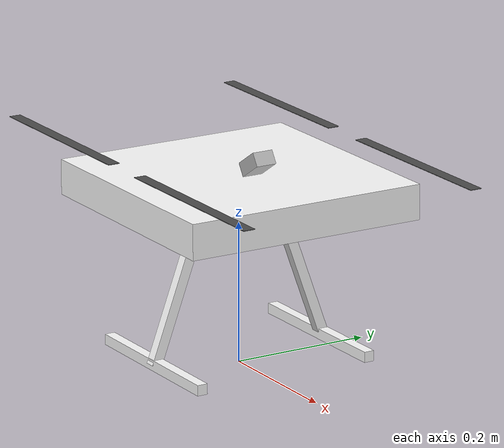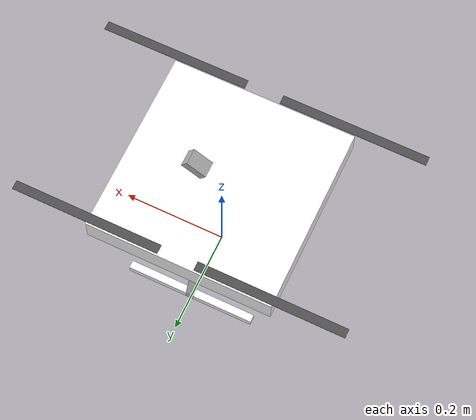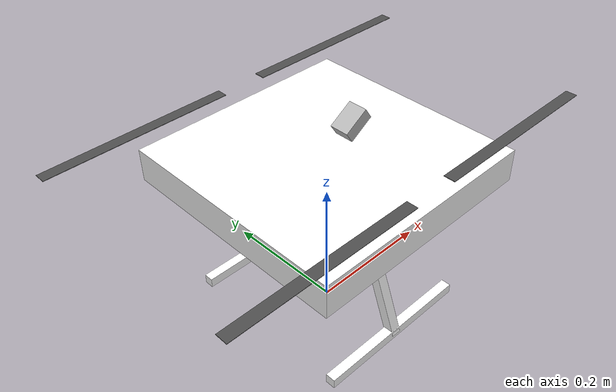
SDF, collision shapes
<?xml version="1.0" encoding="UTF-8"?>
<sdf version='1.9'>
  <model name='x500'>
<include merge='true'>
<uri>model://x500_base</uri>
</include>

    <plugin filename="gz-sim-multicopter-motor-model-system" name="gz::sim::systems::MulticopterMotorModel">
      <jointName>rotor_0_joint</jointName>
      <linkName>rotor_0</linkName>
      <turningDirection>ccw</turningDirection>
      <timeConstantUp>0.0125</timeConstantUp>
      <timeConstantDown>0.025</timeConstantDown>
      <maxRotVelocity>1000.0</maxRotVelocity>
      <motorConstant>8.54858e-06</motorConstant>
      <momentConstant>0.016</momentConstant>
      <commandSubTopic>command/motor_speed</commandSubTopic>
      <motorNumber>0</motorNumber>
      <rotorDragCoefficient>8.06428e-05</rotorDragCoefficient>
      <rollingMomentCoefficient>1e-06</rollingMomentCoefficient>
      <rotorVelocitySlowdownSim>10</rotorVelocitySlowdownSim>
      <motorType>velocity</motorType>
    </plugin>
    <plugin filename="gz-sim-multicopter-motor-model-system" name="gz::sim::systems::MulticopterMotorModel">
      <jointName>rotor_1_joint</jointName>
      <linkName>rotor_1</linkName>
      <turningDirection>ccw</turningDirection>
      <timeConstantUp>0.0125</timeConstantUp>
      <timeConstantDown>0.025</timeConstantDown>
      <maxRotVelocity>1000.0</maxRotVelocity>
      <motorConstant>8.54858e-06</motorConstant>
      <momentConstant>0.016</momentConstant>
      <commandSubTopic>command/motor_speed</commandSubTopic>
      <motorNumber>1</motorNumber>
      <rotorDragCoefficient>8.06428e-05</rotorDragCoefficient>
      <rollingMomentCoefficient>1e-06</rollingMomentCoefficient>
      <rotorVelocitySlowdownSim>10</rotorVelocitySlowdownSim>
      <motorType>velocity</motorType>
    </plugin>
    <plugin filename="gz-sim-multicopter-motor-model-system" name="gz::sim::systems::MulticopterMotorModel">
      <jointName>rotor_2_joint</jointName>
      <linkName>rotor_2</linkName>
      <turningDirection>cw</turningDirection>
      <timeConstantUp>0.0125</timeConstantUp>
      <timeConstantDown>0.025</timeConstantDown>
      <maxRotVelocity>1000.0</maxRotVelocity>
      <motorConstant>8.54858e-06</motorConstant>
      <momentConstant>0.016</momentConstant>
      <commandSubTopic>command/motor_speed</commandSubTopic>
      <motorNumber>2</motorNumber>
      <rotorDragCoefficient>8.06428e-05</rotorDragCoefficient>
      <rollingMomentCoefficient>1e-06</rollingMomentCoefficient>
      <rotorVelocitySlowdownSim>10</rotorVelocitySlowdownSim>
      <motorType>velocity</motorType>
    </plugin>
    <plugin filename="gz-sim-multicopter-motor-model-system" name="gz::sim::systems::MulticopterMotorModel">
      <jointName>rotor_3_joint</jointName>
      <linkName>rotor_3</linkName>
      <turningDirection>cw</turningDirection>
      <timeConstantUp>0.0125</timeConstantUp>
      <timeConstantDown>0.025</timeConstantDown>
      <maxRotVelocity>1000.0</maxRotVelocity>
      <motorConstant>8.54858e-06</motorConstant>
      <momentConstant>0.016</momentConstant>
      <commandSubTopic>command/motor_speed</commandSubTopic>
      <motorNumber>3</motorNumber>
      <rotorDragCoefficient>8.06428e-05</rotorDragCoefficient>
      <rollingMomentCoefficient>1e-06</rollingMomentCoefficient>
      <rotorVelocitySlowdownSim>10</rotorVelocitySlowdownSim>
      <motorType>velocity</motorType>
    </plugin>
  </model>
</sdf>

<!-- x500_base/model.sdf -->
<sdf version='1.9'>
  <model name='x500_base'>
  <!-- ================== LW20 雷达，固定在碳板上 ================== -->
<link name="lidar_sensor_link">
  <!-- Pose 相对于 base_link，贴合碳板位置 -->
  <pose relative_to="base_link">0.047 0.001 0.055 1 0 1.57</pose> <!-- z略高板面1.2cm -->

  <!-- 惯性属性 -->
  <inertial>
    <mass>0.02</mass>
    <inertia>
      <ixx>0.000004</ixx>
      <iyy>0.000004</iyy>
      <izz>0.000002</izz>
      <ixy>0</ixy>
      <ixz>0</ixz>
      <iyz>0</iyz>
    </inertia>
  </inertial>

  <!-- 可视化模型 -->
  <visual name="lidar_visual">
    <geometry>
      <mesh>
        <uri>model://LW20/meshes/LW20.dae</uri>
      </mesh>
    </geometry>
  </visual>

  <!-- 碰撞体 -->
  <collision name="lidar_collision">
    <geometry>
      <box>
        <size>0.03 0.02 0.043</size>
      </box>
    </geometry>
  </collision>

  <!-- GPU LiDAR 传感器 -->
<sensor name="front_lidar" type="gpu_lidar">
  <gz_frame_id>lidar_sensor_link</gz_frame_id>
  <update_rate>50</update_rate>

  <ray>
    <scan>
      <horizontal>
        <samples>360</samples>
        <min_angle>-1.57</min_angle>
        <max_angle>1.57</max_angle>
      </horizontal>
      <vertical>
        <samples>1</samples>
        <min_angle>0</min_angle>
        <max_angle>0</max_angle>
      </vertical>
    </scan>

    <range>
      <min>0.2</min>
      <max>20</max>
      <resolution>0.01</resolution>
    </range>
  </ray>

  <always_on>1</always_on>
  <visualize>true</visualize>
</sensor>
</link>

<!-- 固定 joint，雷达随无人机移动 -->
<joint name="lidar_joint" type="fixed">
  <parent>base_link</parent>
  <child>lidar_sensor_link</child>
  <pose>0 0 0 0 0 0</pose>
</joint>
<!-- ================== LW20 雷达结束 ================== -->
    <pose>0 0 .24 0 0 0</pose>
    <self_collide>false</self_collide>
    <static>false</static>
    <link name="base_link">
      <inertial>
        <mass>2.0</mass>
        <inertia>
          <ixx>0.02166666666666667</ixx>
          <ixy>0</ixy>
          <ixz>0</ixz>
          <iyy>0.02166666666666667</iyy>
          <iyz>0</iyz>
          <izz>0.04000000000000001</izz>
        </inertia>
      </inertial>
      <gravity>true</gravity>
      <velocity_decay/>
      <visual name="base_link_visual">
        <pose>0 0 .025 0 0 3.141592654</pose>
        <geometry>
          <mesh>
            <scale>1 1 1</scale>
            <uri>model://x500_base/meshes/NXP-HGD-CF.dae</uri>
          </mesh>
        </geometry>
      </visual>
      <visual name="5010_motor_base_0">
        <pose>0.174 0.174 .032 0 0 -.45</pose>
        <geometry>
          <mesh>
            <scale>1 1 1</scale>
            <uri>model://x500_base/meshes/5010Base.dae</uri>
          </mesh>
        </geometry>
      </visual>
      <visual name="5010_motor_base_1">
        <pose>-0.174 0.174 .032 0 0 -.45</pose>
        <geometry>
          <mesh>
            <scale>1 1 1</scale>
            <uri>model://x500_base/meshes/5010Base.dae</uri>
          </mesh>
        </geometry>
      </visual>
      <visual name="5010_motor_base_2">
        <pose>0.174 -0.174 .032 0 0 -.45</pose>
        <geometry>
          <mesh>
            <scale>1 1 1</scale>
            <uri>model://x500_base/meshes/5010Base.dae</uri>
          </mesh>
        </geometry>
      </visual>
      <visual name="5010_motor_base_3">
        <pose>-0.174 -0.174 .032 0 0 -.45</pose>
        <geometry>
          <mesh>
            <scale>1 1 1</scale>
            <uri>model://x500_base/meshes/5010Base.dae</uri>
          </mesh>
        </geometry>
      </visual>
      <visual name="NXP_FMUK66_FRONT">
        <pose>0.047 .001 .043 1 0 1.57</pose>
        <cast_shadows>false</cast_shadows>
        <geometry>
          <plane>
            <normal>0 0 1</normal>
            <size>.013 .007</size>
          </plane>
        </geometry>
        <material>
          <diffuse>1.0 1.0 1.0</diffuse>
          <specular>1.0 1.0 1.0</specular>
          <pbr>
            <metal>
              <albedo_map>model://x500_base/materials/textures/nxp.png</albedo_map>
            </metal>
          </pbr>
        </material>
      </visual>
      <visual name="NXP_FMUK66_TOP">
        <pose>-0.023 0 .0515 0 0 -1.57</pose>
        <cast_shadows>false</cast_shadows>
        <geometry>
          <plane>
            <normal>0 0 1</normal>
            <size>.013 .007</size>
          </plane>
        </geometry>
        <material>
          <diffuse>1.0 1.0 1.0</diffuse>
          <specular>1.0 1.0 1.0</specular>
          <pbr>
            <metal>
              <albedo_map>model://x500_base/materials/textures/nxp.png</albedo_map>
            </metal>
          </pbr>
        </material>
      </visual>
      <visual name="RDDRONE_FMUK66_TOP">
        <pose>-.03 0 .0515 0 0 -1.57</pose>
        <cast_shadows>false</cast_shadows>
        <geometry>
          <plane>
            <normal>0 0 1</normal>
            <size>.032 .0034</size>
          </plane>
        </geometry>
        <material>
          <diffuse>1.0 1.0 1.0</diffuse>
          <specular>1.0 1.0 1.0</specular>
          <pbr>
            <metal>
              <albedo_map>model://x500_base/materials/textures/rd.png</albedo_map>
            </metal>
          </pbr>
        </material>
      </visual>
      <collision name="base_link_collision_0">
        <pose>0 0 .007 0 0 0</pose>
        <geometry>
          <box>
            <size>0.35355339059327373 0.35355339059327373 0.05</size>
          </box>
        </geometry>
        <surface>
          <contact>
            <ode>
              <min_depth>0.001</min_depth>
              <max_vel>0</max_vel>
            </ode>
          </contact>
          <friction>
            <ode/>
          </friction>
        </surface>
      </collision>
      <collision name="base_link_collision_1">
        <pose>0 -0.098 -.123 -0.35 0 0</pose>
        <geometry>
          <box>
            <size>0.015 0.015 0.21</size>
          </box>
        </geometry>
        <surface>
          <contact>
            <ode>
              <min_depth>0.001</min_depth>
              <max_vel>0</max_vel>
            </ode>
          </contact>
          <friction>
            <ode/>
          </friction>
        </surface>
      </collision>
      <collision name="base_link_collision_2">
        <pose>0 0.098 -.123 0.35 0 0</pose>
        <geometry>
          <box>
            <size>0.015 0.015 0.21</size>
          </box>
        </geometry>
        <surface>
          <contact>
            <ode>
              <min_depth>0.001</min_depth>
              <max_vel>0</max_vel>
            </ode>
          </contact>
          <friction>
            <ode/>
          </friction>
        </surface>
      </collision>
      <collision name="base_link_collision_3">
        <pose>0 -0.132 -.2195 0 0 0</pose>
        <geometry>
          <box>
            <size>0.25 0.015 0.015</size>
          </box>
        </geometry>
        <surface>
          <contact>
            <ode>
              <min_depth>0.001</min_depth>
              <max_vel>0</max_vel>
            </ode>
          </contact>
          <friction>
            <ode/>
          </friction>
        </surface>
      </collision>
      <collision name="base_link_collision_4">
        <pose>0 0.132 -.2195 0 0 0</pose>
        <geometry>
          <box>
            <size>0.25 0.015 0.015</size>
          </box>
        </geometry>
        <surface>
          <contact>
            <ode>
              <min_depth>0.001</min_depth>
              <max_vel>0</max_vel>
            </ode>
          </contact>
          <friction>
            <ode/>
          </friction>
        </surface>
      </collision>
      <sensor name="air_pressure_sensor" type="air_pressure">
        <always_on>1</always_on>
        <update_rate>50</update_rate>
        <air_pressure>
          <pressure>
            <noise type="gaussian">
              <mean>0</mean>
              <stddev>0.01</stddev>
            </noise>
          </pressure>
        </air_pressure>
      </sensor>
      <sensor name="imu_sensor" type="imu">
        <always_on>1</always_on>
        <update_rate>250</update_rate>
        <imu>
          <angular_velocity>
            <x>
              <noise type="gaussian">
                <mean>0</mean>
                <stddev>0.00018665</stddev>
                <dynamic_bias_stddev>3.8785e-05</dynamic_bias_stddev>
                <dynamic_bias_correlation_time>1000</dynamic_bias_correlation_time>
              </noise>
            </x>
            <y>
              <noise type="gaussian">
                <mean>0</mean>
                <stddev>0.00018665</stddev>
                <dynamic_bias_stddev>3.8785e-05</dynamic_bias_stddev>
                <dynamic_bias_correlation_time>1000</dynamic_bias_correlation_time>
              </noise>
            </y>
            <z>
              <noise type="gaussian">
                <mean>0</mean>
                <stddev>0.00018665</stddev>
                <dynamic_bias_stddev>3.8785e-05</dynamic_bias_stddev>
                <dynamic_bias_correlation_time>1000</dynamic_bias_correlation_time>
              </noise>
            </z>
          </angular_velocity>
          <linear_acceleration>
            <x>
              <noise type="gaussian">
                <mean>0</mean>
                <stddev>0.00186</stddev>
                <dynamic_bias_stddev>0.006</dynamic_bias_stddev>
                <dynamic_bias_correlation_time>300</dynamic_bias_correlation_time>
              </noise>
            </x>
            <y>
              <noise type="gaussian">
                <mean>0</mean>
                <stddev>0.00186</stddev>
                <dynamic_bias_stddev>0.006</dynamic_bias_stddev>
                <dynamic_bias_correlation_time>300</dynamic_bias_correlation_time>
              </noise>
            </y>
            <z>
              <noise type="gaussian">
                <mean>0</mean>
                <stddev>0.00186</stddev>
                <dynamic_bias_stddev>0.006</dynamic_bias_stddev>
                <dynamic_bias_correlation_time>300</dynamic_bias_correlation_time>
              </noise>
            </z>
          </linear_acceleration>
        </imu>
      </sensor>
      <sensor name="navsat_sensor" type="navsat">
        <always_on>1</always_on>
        <update_rate>30</update_rate>
      </sensor>
    </link>
    <link name="rotor_0">
      <gravity>true</gravity>
      <self_collide>false</self_collide>
      <velocity_decay/>
      <pose>0.174 -0.174 0.06 0 0 0</pose>
      <inertial>
          <mass>0.016076923076923075</mass>
          <inertia>
            <ixx>3.8464910483993325e-07</ixx>
            <iyy>2.6115851691700804e-05</iyy>
            <izz>2.649858234714004e-05</izz>
          </inertia>
        </inertial>
      <visual name="rotor_0_visual">
        <pose>-0.022 -0.14638461538461536 -0.016 0 0 0</pose>
        <geometry>
          <mesh>
            <scale>0.8461538461538461 0.8461538461538461 0.8461538461538461</scale>
            <uri>model://x500_base/meshes/1345_prop_ccw.stl</uri>
          </mesh>
        </geometry>
        <material>
          <script>
            <name>Gazebo/DarkGrey</name>
            <uri>file://media/materials/scripts/gazebo.material</uri>
          </script>
        </material>
      </visual>
      <visual name="rotor_0_visual_motor_bell">
        <pose>0 0 -.032 0 0 0</pose>
        <geometry>
          <mesh>
            <scale>1 1 1</scale>
            <uri>model://x500_base/meshes/5010Bell.dae</uri>
          </mesh>
        </geometry>
      </visual>
      <collision name="rotor_0_collision">
        <pose>0 0 0 0 0 0 </pose>
        <geometry>
          <box>
            <size>0.2792307692307692 0.016923076923076923 0.0008461538461538462</size>
          </box>
        </geometry>
        <surface>
          <contact>
            <ode>
              <min_depth>0.001</min_depth>
              <max_vel>0</max_vel>
            </ode>
          </contact>
          <friction>
            <ode/>
          </friction>
        </surface>
      </collision>
    </link>
    <joint name="rotor_0_joint" type="revolute">
      <parent>base_link</parent>
      <child>rotor_0</child>
      <axis>
        <xyz>0 0 1</xyz>
        <limit>
          <lower>-1e+16</lower>
          <upper>1e+16</upper>
        </limit>
        <dynamics>
          <spring_reference>0</spring_reference>
          <spring_stiffness>0</spring_stiffness>
        </dynamics>
      </axis>
    </joint>
    <link name="rotor_1">
      <gravity>true</gravity>
      <self_collide>false</self_collide>
      <velocity_decay/>
      <pose>-0.174 0.174 0.06 0 0 0</pose>
      <inertial>
          <mass>0.016076923076923075</mass>
          <inertia>
            <ixx>3.8464910483993325e-07</ixx>
            <iyy>2.6115851691700804e-05</iyy>
            <izz>2.649858234714004e-05</izz>
          </inertia>
        </inertial>
      <visual name="rotor_1_visual">
        <pose>-0.022 -0.14638461538461536 -0.016 0 0 0</pose>
        <geometry>
          <mesh>
            <scale>0.8461538461538461 0.8461538461538461 0.8461538461538461</scale>
            <uri>model://x500_base/meshes/1345_prop_ccw.stl</uri>
          </mesh>
        </geometry>
        <material>
          <script>
            <name>Gazebo/DarkGrey</name>
            <uri>file://media/materials/scripts/gazebo.material</uri>
          </script>
        </material>
      </visual>
      <visual name="rotor_1_visual_motor_top">
        <pose>0 0 -.032 0 0 0</pose>
        <geometry>
          <mesh>
            <scale>1 1 1</scale>
            <uri>model://x500_base/meshes/5010Bell.dae</uri>
          </mesh>
        </geometry>
      </visual>
      <collision name="rotor_1_collision">
        <pose>0 0 0 0 0 0 </pose>
        <geometry>
          <box>
            <size>0.2792307692307692 0.016923076923076923 0.0008461538461538462</size>
          </box>
        </geometry>
        <surface>
          <contact>
            <ode>
              <min_depth>0.001</min_depth>
              <max_vel>0</max_vel>
            </ode>
          </contact>
          <friction>
            <ode/>
          </friction>
        </surface>
      </collision>
    </link>
    <joint name="rotor_1_joint" type="revolute">
      <parent>base_link</parent>
      <child>rotor_1</child>
      <axis>
        <xyz>0 0 1</xyz>
        <limit>
          <lower>-1e+16</lower>
          <upper>1e+16</upper>
        </limit>
        <dynamics>
          <spring_reference>0</spring_reference>
          <spring_stiffness>0</spring_stiffness>
        </dynamics>
      </axis>
    </joint>
    <link name="rotor_2">
      <gravity>true</gravity>
      <self_collide>false</self_collide>
      <velocity_decay/>
      <pose>0.174 0.174 0.06 0 0 0</pose>
      <inertial>
          <mass>0.016076923076923075</mass>
          <inertia>
            <ixx>3.8464910483993325e-07</ixx>
            <iyy>2.6115851691700804e-05</iyy>
            <izz>2.649858234714004e-05</izz>
          </inertia>
        </inertial>
      <visual name="rotor_2_visual">
        <pose>-0.022 -0.14638461538461536 -0.016 0 0 0</pose>
        <geometry>
          <mesh>
            <scale>0.8461538461538461 0.8461538461538461 0.8461538461538461</scale>
            <uri>model://x500_base/meshes/1345_prop_cw.stl</uri>
          </mesh>
        </geometry>
        <material>
          <script>
            <name>Gazebo/DarkGrey</name>
            <uri>file://media/materials/scripts/gazebo.material</uri>
          </script>
        </material>
      </visual>
      <visual name="rotor_2_visual_motor_top">
        <pose>0 0 -.032 0 0 0</pose>
        <geometry>
          <mesh>
            <scale>1 1 1</scale>
            <uri>model://x500_base/meshes/5010Bell.dae</uri>
          </mesh>
        </geometry>
      </visual>
      <collision name="rotor_2_collision">
        <pose>0 0 0 0 0 0 </pose>
        <geometry>
          <box>
            <size>0.2792307692307692 0.016923076923076923 0.0008461538461538462</size>
          </box>
        </geometry>
        <surface>
          <contact>
            <ode>
              <min_depth>0.001</min_depth>
              <max_vel>0</max_vel>
            </ode>
          </contact>
          <friction>
            <ode/>
          </friction>
        </surface>
      </collision>
    </link>
    <joint name="rotor_2_joint" type="revolute">
      <parent>base_link</parent>
      <child>rotor_2</child>
      <axis>
        <xyz>0 0 1</xyz>
        <limit>
          <lower>-1e+16</lower>
          <upper>1e+16</upper>
        </limit>
        <dynamics>
          <spring_reference>0</spring_reference>
          <spring_stiffness>0</spring_stiffness>
        </dynamics>
      </axis>
    </joint>
    <link name="rotor_3">
      <gravity>true</gravity>
      <self_collide>false</self_collide>
      <velocity_decay/>
      <pose>-0.174 -0.174 0.06 0 0 0</pose>
      <inertial>
          <mass>0.016076923076923075</mass>
          <inertia>
            <ixx>3.8464910483993325e-07</ixx>
            <iyy>2.6115851691700804e-05</iyy>
            <izz>2.649858234714004e-05</izz>
          </inertia>
        </inertial>
      <visual name="rotor_3_visual">
        <pose>-0.022 -0.14638461538461536 -0.016 0 0 0</pose>
        <geometry>
          <mesh>
            <scale>0.8461538461538461 0.8461538461538461 0.8461538461538461</scale>
            <uri>model://x500_base/meshes/1345_prop_cw.stl</uri>
          </mesh>
        </geometry>
        <material>
          <script>
            <name>Gazebo/DarkGrey</name>
            <uri>file://media/materials/scripts/gazebo.material</uri>
          </script>
        </material>
      </visual>
      <visual name="rotor_3_visual_motor_top">
        <pose>0 0 -.032 0 0 0</pose>
        <geometry>
          <mesh>
            <scale>1 1 1</scale>
            <uri>model://x500_base/meshes/5010Bell.dae</uri>
          </mesh>
        </geometry>
      </visual>
      <collision name="rotor_3_collision">
        <pose>0 0 0 0 0 0 </pose>
        <geometry>
          <box>
            <size>0.2792307692307692 0.016923076923076923 0.0008461538461538462</size>
          </box>
        </geometry>
        <surface>
          <contact>
            <ode>
              <min_depth>0.001</min_depth>
              <max_vel>0</max_vel>
            </ode>
          </contact>
          <friction>
            <ode/>
          </friction>
        </surface>
      </collision>
    </link>
    <joint name="rotor_3_joint" type="revolute">
      <parent>base_link</parent>
      <child>rotor_3</child>
      <axis>
        <xyz>0 0 1</xyz>
        <limit>
          <lower>-1e+16</lower>
          <upper>1e+16</upper>
        </limit>
        <dynamics>
          <spring_reference>0</spring_reference>
          <spring_stiffness>0</spring_stiffness>
        </dynamics>
      </axis>
    </joint>
  </model>
</sdf>
